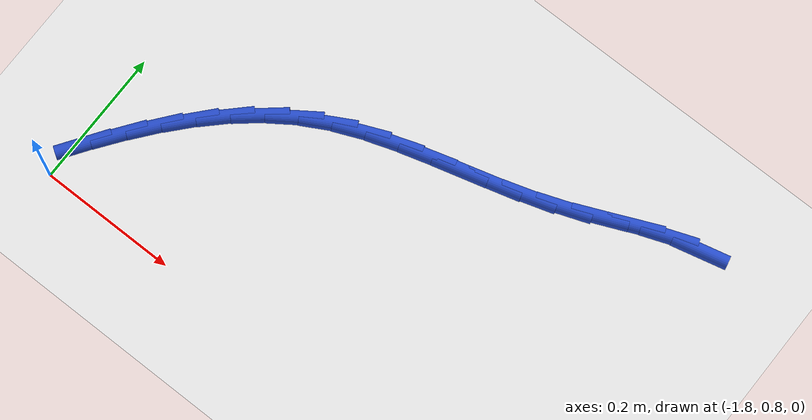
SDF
<sdf version="1.6">
 <world name="default">
  <model name="ground_plane">
   <static>1</static>
   <link name="link">
    <collision name="collision">
     <geometry><plane><normal>0 0 1</normal><size>100 100</size></plane></geometry>
     <surface><friction><ode><mu>100</mu><mu2>50</mu2></ode></friction></surface>
    </collision>
    <visual name="visual">
     <cast_shadows>0</cast_shadows>
     <geometry><plane><normal>0 0 1</normal><size>100 100</size></plane></geometry>
     <material>
      <script><uri>file://media/materials/scripts/gazebo.material</uri><name>Gazebo/WhiteGlow</name></script>
     </material>
    </visual>
   </link>
  </model>
  <model name="line">
   <link name="link_36">
    <pose>-1.0521596159726143 1.2543749232321877 0.01 0 1.57 0.23320302473969673</pose>
    <collision name="collision">
     <geometry><cylinder><radius>0.01</radius><length>0.08</length></cylinder></geometry>
    </collision>
    <visual name="visual">
     <material>
      <script><name>Gazebo/Blue</name><uri>file://media/materials/scripts/gazebo.material</uri></script>
     </material>
     <geometry><cylinder><radius>0.01</radius><length>0.08</length></cylinder></geometry>
    </visual>
   </link>
   <link name="link_37">
    <pose>-1.096042533343938 1.2439516537236917 0.01 0 1.57 0.35729503241830946</pose>
    <collision name="collision">
     <geometry><cylinder><radius>0.01</radius><length>0.08</length></cylinder></geometry>
    </collision>
    <visual name="visual">
     <material>
      <script><name>Gazebo/Blue</name><uri>file://media/materials/scripts/gazebo.material</uri></script>
     </material>
     <geometry><cylinder><radius>0.01</radius><length>0.08</length></cylinder></geometry>
    </visual>
   </link>
   <link name="link_38">
    <pose>-1.1402457609196315 1.2274498029259584 0.01 0 1.57 0.4117840924104204</pose>
    <collision name="collision">
     <geometry><cylinder><radius>0.01</radius><length>0.08</length></cylinder></geometry>
    </collision>
    <visual name="visual">
     <material>
      <script><name>Gazebo/Blue</name><uri>file://media/materials/scripts/gazebo.material</uri></script>
     </material>
     <geometry><cylinder><radius>0.01</radius><length>0.08</length></cylinder></geometry>
    </visual>
   </link>
   <link name="link_39">
    <pose>-1.1849748190969605 1.207914209282112 0.01 0 1.57 0.40560315037573574</pose>
    <collision name="collision">
     <geometry><cylinder><radius>0.01</radius><length>0.08</length></cylinder></geometry>
    </collision>
    <visual name="visual">
     <material>
      <script><name>Gazebo/Blue</name><uri>file://media/materials/scripts/gazebo.material</uri></script>
     </material>
     <geometry><cylinder><radius>0.01</radius><length>0.08</length></cylinder></geometry>
    </visual>
   </link>
   <link name="link_40">
    <pose>-1.2304354255915213 1.1883928016656802 0.01 0 1.57 0.3495222712939641</pose>
    <collision name="collision">
     <geometry><cylinder><radius>0.01</radius><length>0.08</length></cylinder></geometry>
    </collision>
    <visual name="visual">
     <material>
      <script><name>Gazebo/Blue</name><uri>file://media/materials/scripts/gazebo.material</uri></script>
     </material>
     <geometry><cylinder><radius>0.01</radius><length>0.08</length></cylinder></geometry>
    </visual>
   </link>
   <link name="link_41">
    <pose>-1.2767633190631458 1.1715068772545918 0.01 0 1.57 0.296279965969792</pose>
    <collision name="collision">
     <geometry><cylinder><radius>0.01</radius><length>0.08</length></cylinder></geometry>
    </collision>
    <visual name="visual">
     <material>
      <script><name>Gazebo/Blue</name><uri>file://media/materials/scripts/gazebo.material</uri></script>
     </material>
     <geometry><cylinder><radius>0.01</radius><length>0.08</length></cylinder></geometry>
    </visual>
   </link>
   <link name="link_42">
    <pose>-1.3236538443944248 1.1571928449861273 0.01 0 1.57 0.2669550776240468</pose>
    <collision name="collision">
     <geometry><cylinder><radius>0.01</radius><length>0.08</length></cylinder></geometry>
    </collision>
    <visual name="visual">
     <material>
      <script><name>Gazebo/Blue</name><uri>file://media/materials/scripts/gazebo.material</uri></script>
     </material>
     <geometry><cylinder><radius>0.01</radius><length>0.08</length></cylinder></geometry>
    </visual>
   </link>
   <link name="link_43">
    <pose>-1.3706314575388139 1.1443452787399304 0.01 0 1.57 0.26190749248499134</pose>
    <collision name="collision">
     <geometry><cylinder><radius>0.01</radius><length>0.08</length></cylinder></geometry>
    </collision>
    <visual name="visual">
     <material>
      <script><name>Gazebo/Blue</name><uri>file://media/materials/scripts/gazebo.material</uri></script>
     </material>
     <geometry><cylinder><radius>0.01</radius><length>0.08</length></cylinder></geometry>
    </visual>
   </link>
   <link name="link_44">
    <pose>-1.417220237539508 1.13185645453863 0.01 0 1.57 0.28181028640822947</pose>
    <collision name="collision">
     <geometry><cylinder><radius>0.01</radius><length>0.08</length></cylinder></geometry>
    </collision>
    <visual name="visual">
     <material>
      <script><name>Gazebo/Blue</name><uri>file://media/materials/scripts/gazebo.material</uri></script>
     </material>
     <geometry><cylinder><radius>0.01</radius><length>0.08</length></cylinder></geometry>
    </visual>
   </link>
   <link name="link_45">
    <pose>-1.4629442634397 1.118618648404854 0.01 0 1.57 0.3278227785399708</pose>
    <collision name="collision">
     <geometry><cylinder><radius>0.01</radius><length>0.08</length></cylinder></geometry>
    </collision>
    <visual name="visual">
     <material>
      <script><name>Gazebo/Blue</name><uri>file://media/materials/scripts/gazebo.material</uri></script>
     </material>
     <geometry><cylinder><radius>0.01</radius><length>0.08</length></cylinder></geometry>
    </visual>
   </link>
   <link name="link_46">
    <pose>-1.5073276142825824 1.10352413636123 0.01 0 1.57 0.4012351434614374</pose>
    <collision name="collision">
     <geometry><cylinder><radius>0.01</radius><length>0.08</length></cylinder></geometry>
    </collision>
    <visual name="visual">
     <material>
      <script><name>Gazebo/Blue</name><uri>file://media/materials/scripts/gazebo.material</uri></script>
     </material>
     <geometry><cylinder><radius>0.01</radius><length>0.08</length></cylinder></geometry>
    </visual>
   </link>
   <link name="link_47">
    <pose>-1.5498943691113505 1.0854651944303875 0.01 0 1.57 0.5013650158760009</pose>
    <collision name="collision">
     <geometry><cylinder><radius>0.01</radius><length>0.08</length></cylinder></geometry>
    </collision>
    <visual name="visual">
     <material>
      <script><name>Gazebo/Blue</name><uri>file://media/materials/scripts/gazebo.material</uri></script>
     </material>
     <geometry><cylinder><radius>0.01</radius><length>0.08</length></cylinder></geometry>
    </visual>
   </link>
   <link name="link_48">
    <pose>-1.5901883695828827 1.0633810112213105 0.01 0 1.57 0.6070179470870465</pose>
    <collision name="collision">
     <geometry><cylinder><radius>0.01</radius><length>0.08</length></cylinder></geometry>
    </collision>
    <visual name="visual">
     <material>
      <script><name>Gazebo/Blue</name><uri>file://media/materials/scripts/gazebo.material</uri></script>
     </material>
     <geometry><cylinder><radius>0.01</radius><length>0.08</length></cylinder></geometry>
    </visual>
   </link>
   <link name="link_49">
    <pose>-1.628105993035103 1.037047626219275 0.01 0 1.57 0.6996886548832334</pose>
    <collision name="collision">
     <geometry><cylinder><radius>0.01</radius><length>0.08</length></cylinder></geometry>
    </collision>
    <visual name="visual">
     <material>
      <script><name>Gazebo/Blue</name><uri>file://media/materials/scripts/gazebo.material</uri></script>
     </material>
     <geometry><cylinder><radius>0.01</radius><length>0.08</length></cylinder></geometry>
    </visual>
   </link>
   <link name="link_50">
    <pose>-1.6638473599296186 1.006962105781128 0.01 0 1.57 0.7785693957356142</pose>
    <collision name="collision">
     <geometry><cylinder><radius>0.01</radius><length>0.08</length></cylinder></geometry>
    </collision>
    <visual name="visual">
     <material>
      <script><name>Gazebo/Blue</name><uri>file://media/materials/scripts/gazebo.material</uri></script>
     </material>
     <geometry><cylinder><radius>0.01</radius><length>0.08</length></cylinder></geometry>
    </visual>
   </link>
   <link name="link_51">
    <pose>-1.697622526893216 0.973645102779882 0.01 0 1.57 0.8442426290446318</pose>
    <collision name="collision">
     <geometry><cylinder><radius>0.01</radius><length>0.08</length></cylinder></geometry>
    </collision>
    <visual name="visual">
     <material>
      <script><name>Gazebo/Blue</name><uri>file://media/materials/scripts/gazebo.material</uri></script>
     </material>
     <geometry><cylinder><radius>0.01</radius><length>0.08</length></cylinder></geometry>
    </visual>
   </link>
   <link name="link_52">
    <pose>-1.7296415505526856 0.9376172700885501 0.01 0 1.57 0.8976764139280748</pose>
    <collision name="collision">
     <geometry><cylinder><radius>0.01</radius><length>0.08</length></cylinder></geometry>
    </collision>
    <visual name="visual">
     <material>
      <script><name>Gazebo/Blue</name><uri>file://media/materials/scripts/gazebo.material</uri></script>
     </material>
     <geometry><cylinder><radius>0.01</radius><length>0.08</length></cylinder></geometry>
    </visual>
   </link>
   <link name="link_53">
    <pose>-1.760114487534815 0.8993992605801443 0.01 0 1.57 0.9399077733852775</pose>
    <collision name="collision">
     <geometry><cylinder><radius>0.01</radius><length>0.08</length></cylinder></geometry>
    </collision>
    <visual name="visual">
     <material>
      <script><name>Gazebo/Blue</name><uri>file://media/materials/scripts/gazebo.material</uri></script>
     </material>
     <geometry><cylinder><radius>0.01</radius><length>0.08</length></cylinder></geometry>
    </visual>
   </link>
   <link name="link_54">
    <pose>-1.7892513944663937 0.8595117271276772 0.01 0 1.57 0.9718524993182758</pose>
    <collision name="collision">
     <geometry><cylinder><radius>0.01</radius><length>0.08</length></cylinder></geometry>
    </collision>
    <visual name="visual">
     <material>
      <script><name>Gazebo/Blue</name><uri>file://media/materials/scripts/gazebo.material</uri></script>
     </material>
     <geometry><cylinder><radius>0.01</radius><length>0.08</length></cylinder></geometry>
    </visual>
   </link>
  </model>
 </world>
</sdf>
